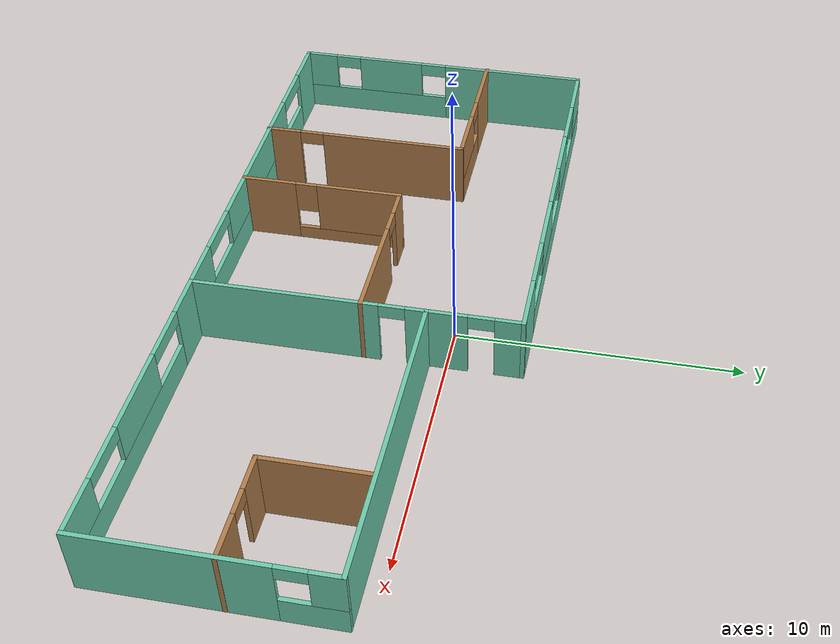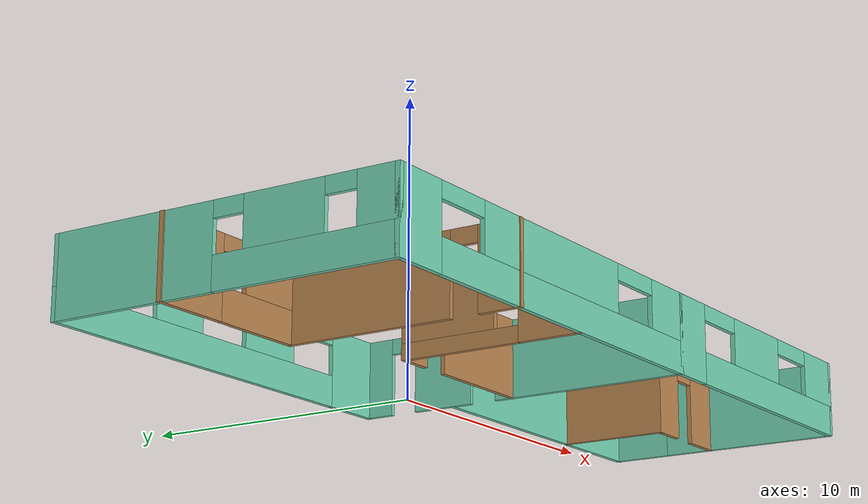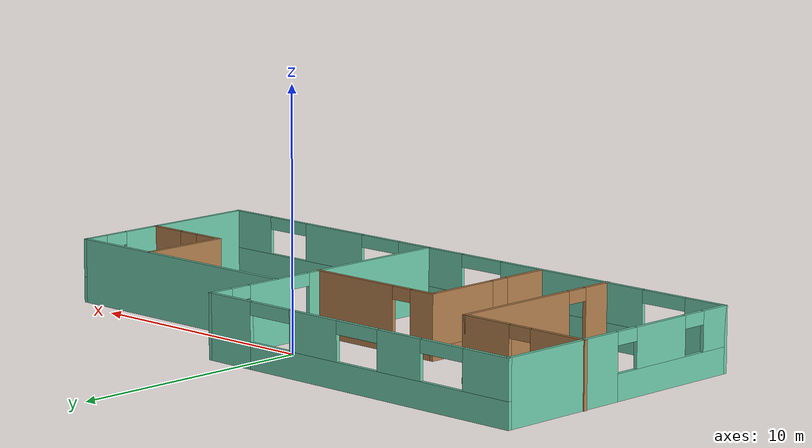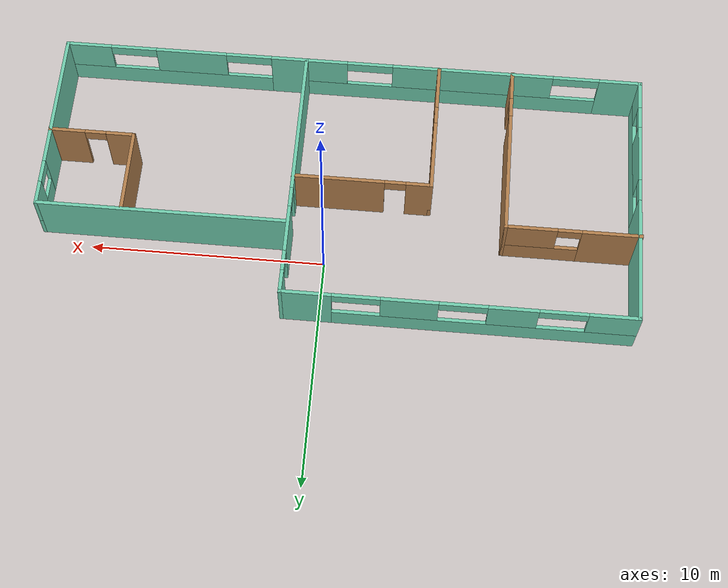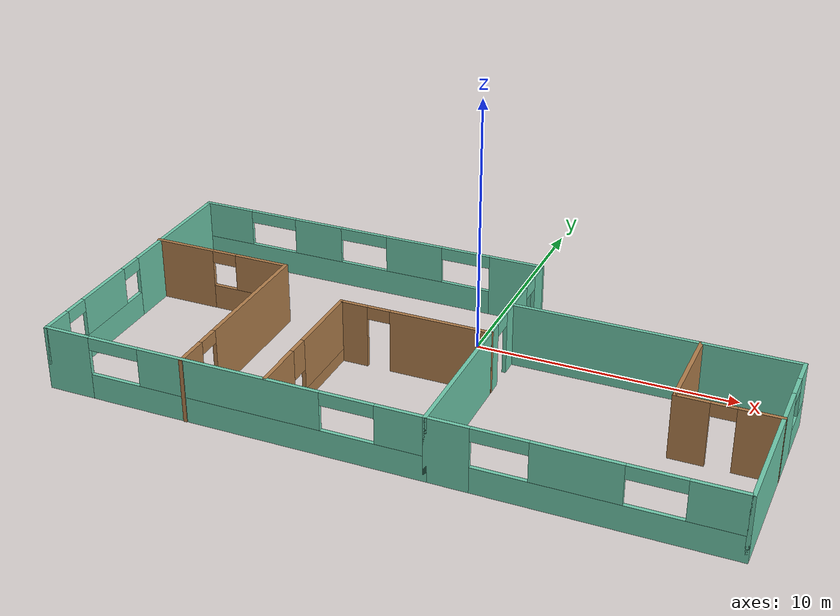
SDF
<?xml version='1.0'?>
<sdf version='1.6'>
  <model name='Building'>
    <pose frame=''>-0.476549 -3.08513 0 0 -0 0</pose>
    <link name='Wall_16'>
      <pose frame=''>-3.82517 -2.7038 0 0 -0 1.5708</pose>
      <visual name='Wall_16_Visual_0'>
        <pose frame=''>-1.99039 0 1.25 0 -0 0</pose>
        <geometry>
          <box>
            <size>2.01921 0.15 2.5</size>
          </box>
        </geometry>
        <material>
          <script>
            <uri>file://media/materials/scripts/gazebo.material</uri>
            <name>Gazebo/Wood</name>
          </script>
          <ambient>1 1 1 1</ambient>
        </material>
        <meta>
          <layer>0</layer>
        </meta>
      </visual>
      <collision name='Wall_16_Collision_0'>
        <geometry>
          <box>
            <size>2.01921 0.15 2.5</size>
          </box>
        </geometry>
        <pose frame=''>-1.99039 0 1.25 0 -0 0</pose>
      </collision>
      <visual name='Wall_16_Visual_1'>
        <pose frame=''>1.00961 0 0.25 0 -0 0</pose>
        <geometry>
          <box>
            <size>3.98079 0.15 0.5</size>
          </box>
        </geometry>
        <material>
          <script>
            <uri>file://media/materials/scripts/gazebo.material</uri>
            <name>Gazebo/Wood</name>
          </script>
          <ambient>1 1 1 1</ambient>
        </material>
        <meta>
          <layer>0</layer>
        </meta>
      </visual>
      <collision name='Wall_16_Collision_1'>
        <geometry>
          <box>
            <size>3.98079 0.15 0.5</size>
          </box>
        </geometry>
        <pose frame=''>1.00961 0 0.25 0 -0 0</pose>
      </collision>
      <visual name='Wall_16_Visual_2'>
        <pose frame=''>1.4096 0 1.5 0 -0 0</pose>
        <geometry>
          <box>
            <size>3.18079 0.15 2</size>
          </box>
        </geometry>
        <material>
          <script>
            <uri>file://media/materials/scripts/gazebo.material</uri>
            <name>Gazebo/Wood</name>
          </script>
          <ambient>1 1 1 1</ambient>
        </material>
        <meta>
          <layer>0</layer>
        </meta>
      </visual>
      <collision name='Wall_16_Collision_2'>
        <geometry>
          <box>
            <size>3.18079 0.15 2</size>
          </box>
        </geometry>
        <pose frame=''>1.4096 0 1.5 0 -0 0</pose>
      </collision>
      <visual name='Wall_16_Visual_3'>
        <pose frame=''>-0.580791 0 1.9 0 -0 0</pose>
        <geometry>
          <box>
            <size>0.8 0.15 1.2</size>
          </box>
        </geometry>
        <material>
          <script>
            <uri>file://media/materials/scripts/gazebo.material</uri>
            <name>Gazebo/Wood</name>
          </script>
          <ambient>1 1 1 1</ambient>
        </material>
        <meta>
          <layer>0</layer>
        </meta>
      </visual>
      <collision name='Wall_16_Collision_3'>
        <geometry>
          <box>
            <size>0.8 0.15 1.2</size>
          </box>
        </geometry>
        <pose frame=''>-0.580791 0 1.9 0 -0 0</pose>
      </collision>
    </link>
    <link name='Wall_17'>
      <pose frame=''>-0.900166 0.221202 0 0 -0 0</pose>
      <visual name='Wall_17_Visual_0'>
        <pose frame=''>-2.42762 0 1.25 0 -0 0</pose>
        <geometry>
          <box>
            <size>1.14476 0.15 2.5</size>
          </box>
        </geometry>
        <material>
          <script>
            <uri>file://media/materials/scripts/gazebo.material</uri>
            <name>Gazebo/Wood</name>
          </script>
          <ambient>1 1 1 1</ambient>
        </material>
        <meta>
          <layer>0</layer>
        </meta>
      </visual>
      <collision name='Wall_17_Collision_0'>
        <geometry>
          <box>
            <size>1.14476 0.15 2.5</size>
          </box>
        </geometry>
        <pose frame=''>-2.42762 0 1.25 0 -0 0</pose>
      </collision>
      <visual name='Wall_17_Visual_1'>
        <pose frame=''>1.02238 0 1.25 0 -0 0</pose>
        <geometry>
          <box>
            <size>3.95524 0.15 2.5</size>
          </box>
        </geometry>
        <material>
          <script>
            <uri>file://media/materials/scripts/gazebo.material</uri>
            <name>Gazebo/Wood</name>
          </script>
          <ambient>1 1 1 1</ambient>
        </material>
        <meta>
          <layer>0</layer>
        </meta>
      </visual>
      <collision name='Wall_17_Collision_1'>
        <geometry>
          <box>
            <size>3.95524 0.15 2.5</size>
          </box>
        </geometry>
        <pose frame=''>1.02238 0 1.25 0 -0 0</pose>
      </collision>
      <visual name='Wall_17_Visual_2'>
        <pose frame=''>-1.40524 0 2.25 0 -0 0</pose>
        <geometry>
          <box>
            <size>0.9 0.15 0.5</size>
          </box>
        </geometry>
        <material>
          <script>
            <uri>file://media/materials/scripts/gazebo.material</uri>
            <name>Gazebo/Wood</name>
          </script>
          <ambient>1 1 1 1</ambient>
        </material>
        <meta>
          <layer>0</layer>
        </meta>
      </visual>
      <collision name='Wall_17_Collision_2'>
        <geometry>
          <box>
            <size>0.9 0.15 0.5</size>
          </box>
        </geometry>
        <pose frame=''>-1.40524 0 2.25 0 -0 0</pose>
      </collision>
    </link>
    <link name='Wall_23'>
      <pose frame=''>7.32067 -5.66058 0 0 -0 0</pose>
      <visual name='Wall_23_Visual_0'>
        <pose frame=''>-4.56131 0 1.25 0 -0 0</pose>
        <geometry>
          <box>
            <size>1.62738 0.15 2.5</size>
          </box>
        </geometry>
        <material>
          <script>
            <uri>file://media/materials/scripts/gazebo.material</uri>
            <name>Gazebo/Grey</name>
          </script>
          <ambient>0.435294 0.796078 0.67451 1</ambient>
        </material>
        <meta>
          <layer>0</layer>
        </meta>
      </visual>
      <collision name='Wall_23_Collision_0'>
        <geometry>
          <box>
            <size>1.62738 0.15 2.5</size>
          </box>
        </geometry>
        <pose frame=''>-4.56131 0 1.25 0 -0 0</pose>
      </collision>
      <visual name='Wall_23_Visual_1'>
        <pose frame=''>0.81369 0 0.5 0 -0 0</pose>
        <geometry>
          <box>
            <size>9.12262 0.15 1</size>
          </box>
        </geometry>
        <material>
          <script>
            <uri>file://media/materials/scripts/gazebo.material</uri>
            <name>Gazebo/Grey</name>
          </script>
          <ambient>0.435294 0.796078 0.67451 1</ambient>
        </material>
        <meta>
          <layer>0</layer>
        </meta>
      </visual>
      <collision name='Wall_23_Collision_1'>
        <geometry>
          <box>
            <size>9.12262 0.15 1</size>
          </box>
        </geometry>
        <pose frame=''>0.81369 0 0.5 0 -0 0</pose>
      </collision>
      <visual name='Wall_23_Visual_2'>
        <pose frame=''>-0.193336 0 1.75 0 -0 0</pose>
        <geometry>
          <box>
            <size>3.10857 0.15 1.5</size>
          </box>
        </geometry>
        <material>
          <script>
            <uri>file://media/materials/scripts/gazebo.material</uri>
            <name>Gazebo/Grey</name>
          </script>
          <ambient>0.435294 0.796078 0.67451 1</ambient>
        </material>
        <meta>
          <layer>0</layer>
        </meta>
      </visual>
      <collision name='Wall_23_Collision_2'>
        <geometry>
          <box>
            <size>3.10857 0.15 1.5</size>
          </box>
        </geometry>
        <pose frame=''>-0.193336 0 1.75 0 -0 0</pose>
      </collision>
      <visual name='Wall_23_Visual_3'>
        <pose frame=''>4.36797 0 1.75 0 -0 0</pose>
        <geometry>
          <box>
            <size>2.01405 0.15 1.5</size>
          </box>
        </geometry>
        <material>
          <script>
            <uri>file://media/materials/scripts/gazebo.material</uri>
            <name>Gazebo/Grey</name>
          </script>
          <ambient>0.435294 0.796078 0.67451 1</ambient>
        </material>
        <meta>
          <layer>0</layer>
        </meta>
      </visual>
      <collision name='Wall_23_Collision_3'>
        <geometry>
          <box>
            <size>2.01405 0.15 1.5</size>
          </box>
        </geometry>
        <pose frame=''>4.36797 0 1.75 0 -0 0</pose>
      </collision>
      <visual name='Wall_23_Visual_4'>
        <pose frame=''>-2.74762 0 2.25 0 -0 0</pose>
        <geometry>
          <box>
            <size>2 0.15 0.5</size>
          </box>
        </geometry>
        <material>
          <script>
            <uri>file://media/materials/scripts/gazebo.material</uri>
            <name>Gazebo/Grey</name>
          </script>
          <ambient>0.435294 0.796078 0.67451 1</ambient>
        </material>
        <meta>
          <layer>0</layer>
        </meta>
      </visual>
      <collision name='Wall_23_Collision_4'>
        <geometry>
          <box>
            <size>2 0.15 0.5</size>
          </box>
        </geometry>
        <pose frame=''>-2.74762 0 2.25 0 -0 0</pose>
      </collision>
      <visual name='Wall_23_Visual_5'>
        <pose frame=''>2.36095 0 2.25 0 -0 0</pose>
        <geometry>
          <box>
            <size>2 0.15 0.5</size>
          </box>
        </geometry>
        <material>
          <script>
            <uri>file://media/materials/scripts/gazebo.material</uri>
            <name>Gazebo/Grey</name>
          </script>
          <ambient>0.435294 0.796078 0.67451 1</ambient>
        </material>
        <meta>
          <layer>0</layer>
        </meta>
      </visual>
      <collision name='Wall_23_Collision_5'>
        <geometry>
          <box>
            <size>2 0.15 0.5</size>
          </box>
        </geometry>
        <pose frame=''>2.36095 0 2.25 0 -0 0</pose>
      </collision>
    </link>
    <link name='Wall_24'>
      <pose frame=''>12.6207 -1.61058 0 0 -0 1.5708</pose>
      <visual name='Wall_24_Visual_0'>
        <pose frame=''>-1.03878 0 1.25 0 -0 0</pose>
        <geometry>
          <box>
            <size>6.17244 0.15 2.5</size>
          </box>
        </geometry>
        <material>
          <script>
            <uri>file://media/materials/scripts/gazebo.material</uri>
            <name>Gazebo/Grey</name>
          </script>
          <ambient>0.435294 0.796078 0.67451 1</ambient>
        </material>
        <meta>
          <layer>0</layer>
        </meta>
      </visual>
      <collision name='Wall_24_Collision_0'>
        <geometry>
          <box>
            <size>6.17244 0.15 2.5</size>
          </box>
        </geometry>
        <pose frame=''>-1.03878 0 1.25 0 -0 0</pose>
      </collision>
      <visual name='Wall_24_Visual_1'>
        <pose frame=''>3.08622 0 0.5 0 -0 0</pose>
        <geometry>
          <box>
            <size>2.07756 0.15 1</size>
          </box>
        </geometry>
        <material>
          <script>
            <uri>file://media/materials/scripts/gazebo.material</uri>
            <name>Gazebo/Grey</name>
          </script>
          <ambient>0.435294 0.796078 0.67451 1</ambient>
        </material>
        <meta>
          <layer>0</layer>
        </meta>
      </visual>
      <collision name='Wall_24_Collision_1'>
        <geometry>
          <box>
            <size>2.07756 0.15 1</size>
          </box>
        </geometry>
        <pose frame=''>3.08622 0 0.5 0 -0 0</pose>
      </collision>
      <visual name='Wall_24_Visual_2'>
        <pose frame=''>3.58622 0 1.75 0 -0 0</pose>
        <geometry>
          <box>
            <size>1.07756 0.15 1.5</size>
          </box>
        </geometry>
        <material>
          <script>
            <uri>file://media/materials/scripts/gazebo.material</uri>
            <name>Gazebo/Grey</name>
          </script>
          <ambient>0.435294 0.796078 0.67451 1</ambient>
        </material>
        <meta>
          <layer>0</layer>
        </meta>
      </visual>
      <collision name='Wall_24_Collision_2'>
        <geometry>
          <box>
            <size>1.07756 0.15 1.5</size>
          </box>
        </geometry>
        <pose frame=''>3.58622 0 1.75 0 -0 0</pose>
      </collision>
      <visual name='Wall_24_Visual_3'>
        <pose frame=''>2.54744 0 2.25 0 -0 0</pose>
        <geometry>
          <box>
            <size>1 0.15 0.5</size>
          </box>
        </geometry>
        <material>
          <script>
            <uri>file://media/materials/scripts/gazebo.material</uri>
            <name>Gazebo/Grey</name>
          </script>
          <ambient>0.435294 0.796078 0.67451 1</ambient>
        </material>
        <meta>
          <layer>0</layer>
        </meta>
      </visual>
      <collision name='Wall_24_Collision_3'>
        <geometry>
          <box>
            <size>1 0.15 0.5</size>
          </box>
        </geometry>
        <pose frame=''>2.54744 0 2.25 0 -0 0</pose>
      </collision>
    </link>
    <link name='Wall_25'>
      <collision name='Wall_25_Collision'>
        <geometry>
          <box>
            <size>10.75 0.15 2.5</size>
          </box>
        </geometry>
        <pose frame=''>0 0 1.25 0 -0 0</pose>
      </collision>
      <visual name='Wall_25_Visual'>
        <pose frame=''>0 0 1.25 0 -0 0</pose>
        <geometry>
          <box>
            <size>10.75 0.15 2.5</size>
          </box>
        </geometry>
        <material>
          <script>
            <uri>file://media/materials/scripts/gazebo.material</uri>
            <name>Gazebo/Grey</name>
          </script>
          <ambient>0.435294 0.796078 0.67451 1</ambient>
        </material>
        <meta>
          <layer>0</layer>
        </meta>
      </visual>
      <pose frame=''>7.32067 2.43942 0 0 -0 3.14159</pose>
    </link>
    <link name='Wall_27'>
      <collision name='Wall_27_Collision'>
        <geometry>
          <box>
            <size>3.75 0.15 2.5</size>
          </box>
        </geometry>
        <pose frame=''>0 0 1.25 0 -0 0</pose>
      </collision>
      <visual name='Wall_27_Visual'>
        <pose frame=''>0 0 1.25 0 -0 0</pose>
        <geometry>
          <box>
            <size>3.75 0.15 2.5</size>
          </box>
        </geometry>
        <material>
          <script>
            <uri>file://media/materials/scripts/gazebo.material</uri>
            <name>Gazebo/Wood</name>
          </script>
          <ambient>1 1 1 1</ambient>
        </material>
        <meta>
          <layer>0</layer>
        </meta>
      </visual>
      <pose frame=''>9.02628 0.615984 0 0 0 -1.5708</pose>
    </link>
    <link name='Wall_28'>
      <pose frame=''>10.8263 -1.18402 0 0 -0 0</pose>
      <visual name='Wall_28_Visual_0'>
        <pose frame=''>-1.23789 0 1.25 0 -0 0</pose>
        <geometry>
          <box>
            <size>1.27421 0.15 2.5</size>
          </box>
        </geometry>
        <material>
          <script>
            <uri>file://media/materials/scripts/gazebo.material</uri>
            <name>Gazebo/Wood</name>
          </script>
          <ambient>1 1 1 1</ambient>
        </material>
        <meta>
          <layer>0</layer>
        </meta>
      </visual>
      <collision name='Wall_28_Collision_0'>
        <geometry>
          <box>
            <size>1.27421 0.15 2.5</size>
          </box>
        </geometry>
        <pose frame=''>-1.23789 0 1.25 0 -0 0</pose>
      </collision>
      <visual name='Wall_28_Visual_1'>
        <pose frame=''>1.08711 0 1.25 0 -0 0</pose>
        <geometry>
          <box>
            <size>1.57579 0.15 2.5</size>
          </box>
        </geometry>
        <material>
          <script>
            <uri>file://media/materials/scripts/gazebo.material</uri>
            <name>Gazebo/Wood</name>
          </script>
          <ambient>1 1 1 1</ambient>
        </material>
        <meta>
          <layer>0</layer>
        </meta>
      </visual>
      <collision name='Wall_28_Collision_1'>
        <geometry>
          <box>
            <size>1.57579 0.15 2.5</size>
          </box>
        </geometry>
        <pose frame=''>1.08711 0 1.25 0 -0 0</pose>
      </collision>
      <visual name='Wall_28_Visual_2'>
        <pose frame=''>-0.150787 0 2.25 0 -0 0</pose>
        <geometry>
          <box>
            <size>0.9 0.15 0.5</size>
          </box>
        </geometry>
        <material>
          <script>
            <uri>file://media/materials/scripts/gazebo.material</uri>
            <name>Gazebo/Wood</name>
          </script>
          <ambient>1 1 1 1</ambient>
        </material>
        <meta>
          <layer>0</layer>
        </meta>
      </visual>
      <collision name='Wall_28_Collision_2'>
        <geometry>
          <box>
            <size>0.9 0.15 0.5</size>
          </box>
        </geometry>
        <pose frame=''>-0.150787 0 2.25 0 -0 0</pose>
      </collision>
    </link>
    <link name='Wall_30'>
      <pose frame=''>-9.82628 1.91058 0 0 -0 0</pose>
      <visual name='Wall_30_Visual_0'>
        <pose frame=''>-1.61536 0 1.25 0 -0 0</pose>
        <geometry>
          <box>
            <size>2.51928 0.15 2.5</size>
          </box>
        </geometry>
        <material>
          <script>
            <uri>file://media/materials/scripts/gazebo.material</uri>
            <name>Gazebo/Wood</name>
          </script>
          <ambient>1 1 1 1</ambient>
        </material>
        <meta>
          <layer>0</layer>
        </meta>
      </visual>
      <collision name='Wall_30_Collision_0'>
        <geometry>
          <box>
            <size>2.51928 0.15 2.5</size>
          </box>
        </geometry>
        <pose frame=''>-1.61536 0 1.25 0 -0 0</pose>
      </collision>
      <visual name='Wall_30_Visual_1'>
        <pose frame=''>1.25964 0 0.5 0 -0 0</pose>
        <geometry>
          <box>
            <size>3.23072 0.15 1</size>
          </box>
        </geometry>
        <material>
          <script>
            <uri>file://media/materials/scripts/gazebo.material</uri>
            <name>Gazebo/Wood</name>
          </script>
          <ambient>1 1 1 1</ambient>
        </material>
        <meta>
          <layer>0</layer>
        </meta>
      </visual>
      <collision name='Wall_30_Collision_1'>
        <geometry>
          <box>
            <size>3.23072 0.15 1</size>
          </box>
        </geometry>
        <pose frame=''>1.25964 0 0.5 0 -0 0</pose>
      </collision>
      <visual name='Wall_30_Visual_2'>
        <pose frame=''>1.75964 0 1.75 0 -0 0</pose>
        <geometry>
          <box>
            <size>2.23072 0.15 1.5</size>
          </box>
        </geometry>
        <material>
          <script>
            <uri>file://media/materials/scripts/gazebo.material</uri>
            <name>Gazebo/Wood</name>
          </script>
          <ambient>1 1 1 1</ambient>
        </material>
        <meta>
          <layer>0</layer>
        </meta>
      </visual>
      <collision name='Wall_30_Collision_2'>
        <geometry>
          <box>
            <size>2.23072 0.15 1.5</size>
          </box>
        </geometry>
        <pose frame=''>1.75964 0 1.75 0 -0 0</pose>
      </collision>
      <visual name='Wall_30_Visual_3'>
        <pose frame=''>0.144283 0 2.25 0 -0 0</pose>
        <geometry>
          <box>
            <size>1 0.15 0.5</size>
          </box>
        </geometry>
        <material>
          <script>
            <uri>file://media/materials/scripts/gazebo.material</uri>
            <name>Gazebo/Wood</name>
          </script>
          <ambient>1 1 1 1</ambient>
        </material>
        <meta>
          <layer>0</layer>
        </meta>
      </visual>
      <collision name='Wall_30_Collision_3'>
        <geometry>
          <box>
            <size>1 0.15 0.5</size>
          </box>
        </geometry>
        <pose frame=''>0.144283 0 2.25 0 -0 0</pose>
      </collision>
    </link>
    <link name='Wall_33'>
      <pose frame=''>-7.02628 -1.88942 0 0 0 -1.5708</pose>
      <visual name='Wall_33_Visual_0'>
        <pose frame=''>-1.12318 0 1.25 0 -0 0</pose>
        <geometry>
          <box>
            <size>5.50364 0.15 2.5</size>
          </box>
        </geometry>
        <material>
          <script>
            <uri>file://media/materials/scripts/gazebo.material</uri>
            <name>Gazebo/Wood</name>
          </script>
          <ambient>1 1 1 1</ambient>
        </material>
        <meta>
          <layer>0</layer>
        </meta>
      </visual>
      <collision name='Wall_33_Collision_0'>
        <geometry>
          <box>
            <size>5.50364 0.15 2.5</size>
          </box>
        </geometry>
        <pose frame=''>-1.12318 0 1.25 0 -0 0</pose>
      </collision>
      <visual name='Wall_33_Visual_1'>
        <pose frame=''>3.20182 0 1.25 0 -0 0</pose>
        <geometry>
          <box>
            <size>1.34636 0.15 2.5</size>
          </box>
        </geometry>
        <material>
          <script>
            <uri>file://media/materials/scripts/gazebo.material</uri>
            <name>Gazebo/Wood</name>
          </script>
          <ambient>1 1 1 1</ambient>
        </material>
        <meta>
          <layer>0</layer>
        </meta>
      </visual>
      <collision name='Wall_33_Collision_1'>
        <geometry>
          <box>
            <size>1.34636 0.15 2.5</size>
          </box>
        </geometry>
        <pose frame=''>3.20182 0 1.25 0 -0 0</pose>
      </collision>
      <visual name='Wall_33_Visual_2'>
        <pose frame=''>2.07864 0 2.25 0 -0 0</pose>
        <geometry>
          <box>
            <size>0.9 0.15 0.5</size>
          </box>
        </geometry>
        <material>
          <script>
            <uri>file://media/materials/scripts/gazebo.material</uri>
            <name>Gazebo/Wood</name>
          </script>
          <ambient>1 1 1 1</ambient>
        </material>
        <meta>
          <layer>0</layer>
        </meta>
      </visual>
      <collision name='Wall_33_Collision_2'>
        <geometry>
          <box>
            <size>0.9 0.15 0.5</size>
          </box>
        </geometry>
        <pose frame=''>2.07864 0 2.25 0 -0 0</pose>
      </collision>
    </link>
    <link name='Wall_4'>
      <pose frame=''>-12.5793 0.01442 0 0 0 -1.5708</pose>
      <visual name='Wall_4_Visual_0'>
        <pose frame=''>-2.95936 0 1.25 0 -0 0</pose>
        <geometry>
          <box>
            <size>5.58129 0.15 2.5</size>
          </box>
        </geometry>
        <material>
          <script>
            <uri>file://media/materials/scripts/gazebo.material</uri>
            <name>Gazebo/Grey</name>
          </script>
          <ambient>0.435294 0.796078 0.67451 1</ambient>
        </material>
        <meta>
          <layer>0</layer>
        </meta>
      </visual>
      <collision name='Wall_4_Collision_0'>
        <geometry>
          <box>
            <size>5.58129 0.15 2.5</size>
          </box>
        </geometry>
        <pose frame=''>-2.95936 0 1.25 0 -0 0</pose>
      </collision>
      <visual name='Wall_4_Visual_1'>
        <pose frame=''>2.79064 0 0.5 0 -0 0</pose>
        <geometry>
          <box>
            <size>5.91871 0.15 1</size>
          </box>
        </geometry>
        <material>
          <script>
            <uri>file://media/materials/scripts/gazebo.material</uri>
            <name>Gazebo/Grey</name>
          </script>
          <ambient>0.435294 0.796078 0.67451 1</ambient>
        </material>
        <meta>
          <layer>0</layer>
        </meta>
      </visual>
      <collision name='Wall_4_Collision_1'>
        <geometry>
          <box>
            <size>5.91871 0.15 1</size>
          </box>
        </geometry>
        <pose frame=''>2.79064 0 0.5 0 -0 0</pose>
      </collision>
      <visual name='Wall_4_Visual_2'>
        <pose frame=''>2.13634 0 1.75 0 -0 0</pose>
        <geometry>
          <box>
            <size>2.61011 0.15 1.5</size>
          </box>
        </geometry>
        <material>
          <script>
            <uri>file://media/materials/scripts/gazebo.material</uri>
            <name>Gazebo/Grey</name>
          </script>
          <ambient>0.435294 0.796078 0.67451 1</ambient>
        </material>
        <meta>
          <layer>0</layer>
        </meta>
      </visual>
      <collision name='Wall_4_Collision_2'>
        <geometry>
          <box>
            <size>2.61011 0.15 1.5</size>
          </box>
        </geometry>
        <pose frame=''>2.13634 0 1.75 0 -0 0</pose>
      </collision>
      <visual name='Wall_4_Visual_3'>
        <pose frame=''>5.0957 0 1.75 0 -0 0</pose>
        <geometry>
          <box>
            <size>1.3086 0.15 1.5</size>
          </box>
        </geometry>
        <material>
          <script>
            <uri>file://media/materials/scripts/gazebo.material</uri>
            <name>Gazebo/Grey</name>
          </script>
          <ambient>0.435294 0.796078 0.67451 1</ambient>
        </material>
        <meta>
          <layer>0</layer>
        </meta>
      </visual>
      <collision name='Wall_4_Collision_3'>
        <geometry>
          <box>
            <size>1.3086 0.15 1.5</size>
          </box>
        </geometry>
        <pose frame=''>5.0957 0 1.75 0 -0 0</pose>
      </collision>
      <visual name='Wall_4_Visual_4'>
        <pose frame=''>0.331288 0 2.25 0 -0 0</pose>
        <geometry>
          <box>
            <size>1 0.15 0.5</size>
          </box>
        </geometry>
        <material>
          <script>
            <uri>file://media/materials/scripts/gazebo.material</uri>
            <name>Gazebo/Grey</name>
          </script>
          <ambient>0.435294 0.796078 0.67451 1</ambient>
        </material>
        <meta>
          <layer>0</layer>
        </meta>
      </visual>
      <collision name='Wall_4_Collision_4'>
        <geometry>
          <box>
            <size>1 0.15 0.5</size>
          </box>
        </geometry>
        <pose frame=''>0.331288 0 2.25 0 -0 0</pose>
      </collision>
      <visual name='Wall_4_Visual_5'>
        <pose frame=''>3.9414 0 2.25 0 -0 0</pose>
        <geometry>
          <box>
            <size>1 0.15 0.5</size>
          </box>
        </geometry>
        <material>
          <script>
            <uri>file://media/materials/scripts/gazebo.material</uri>
            <name>Gazebo/Grey</name>
          </script>
          <ambient>0.435294 0.796078 0.67451 1</ambient>
        </material>
        <meta>
          <layer>0</layer>
        </meta>
      </visual>
      <collision name='Wall_4_Collision_5'>
        <geometry>
          <box>
            <size>1 0.15 0.5</size>
          </box>
        </geometry>
        <pose frame=''>3.9414 0 2.25 0 -0 0</pose>
      </collision>
    </link>
    <link name='Wall_5'>
      <pose frame=''>-5.27933 -5.66058 0 0 -0 0</pose>
      <visual name='Wall_5_Visual_0'>
        <pose frame=''>-6.45001 0 1.25 0 -0 0</pose>
        <geometry>
          <box>
            <size>1.84997 0.15 2.5</size>
          </box>
        </geometry>
        <material>
          <script>
            <uri>file://media/materials/scripts/gazebo.material</uri>
            <name>Gazebo/Grey</name>
          </script>
          <ambient>0.435294 0.796078 0.67451 1</ambient>
        </material>
        <meta>
          <layer>0</layer>
        </meta>
      </visual>
      <collision name='Wall_5_Collision_0'>
        <geometry>
          <box>
            <size>1.84997 0.15 2.5</size>
          </box>
        </geometry>
        <pose frame=''>-6.45001 0 1.25 0 -0 0</pose>
      </collision>
      <visual name='Wall_5_Visual_1'>
        <pose frame=''>0.924986 0 0.5 0 -0 0</pose>
        <geometry>
          <box>
            <size>12.9 0.15 1</size>
          </box>
        </geometry>
        <material>
          <script>
            <uri>file://media/materials/scripts/gazebo.material</uri>
            <name>Gazebo/Grey</name>
          </script>
          <ambient>0.435294 0.796078 0.67451 1</ambient>
        </material>
        <meta>
          <layer>0</layer>
        </meta>
      </visual>
      <collision name='Wall_5_Collision_1'>
        <geometry>
          <box>
            <size>12.9 0.15 1</size>
          </box>
        </geometry>
        <pose frame=''>0.924986 0 0.5 0 -0 0</pose>
      </collision>
      <visual name='Wall_5_Visual_2'>
        <pose frame=''>-0.012969 0 1.75 0 -0 0</pose>
        <geometry>
          <box>
            <size>7.02412 0.15 1.5</size>
          </box>
        </geometry>
        <material>
          <script>
            <uri>file://media/materials/scripts/gazebo.material</uri>
            <name>Gazebo/Grey</name>
          </script>
          <ambient>0.435294 0.796078 0.67451 1</ambient>
        </material>
        <meta>
          <layer>0</layer>
        </meta>
      </visual>
      <collision name='Wall_5_Collision_2'>
        <geometry>
          <box>
            <size>7.02412 0.15 1.5</size>
          </box>
        </geometry>
        <pose frame=''>-0.012969 0 1.75 0 -0 0</pose>
      </collision>
      <visual name='Wall_5_Visual_3'>
        <pose frame=''>6.43705 0 1.75 0 -0 0</pose>
        <geometry>
          <box>
            <size>1.87591 0.15 1.5</size>
          </box>
        </geometry>
        <material>
          <script>
            <uri>file://media/materials/scripts/gazebo.material</uri>
            <name>Gazebo/Grey</name>
          </script>
          <ambient>0.435294 0.796078 0.67451 1</ambient>
        </material>
        <meta>
          <layer>0</layer>
        </meta>
      </visual>
      <collision name='Wall_5_Collision_3'>
        <geometry>
          <box>
            <size>1.87591 0.15 1.5</size>
          </box>
        </geometry>
        <pose frame=''>6.43705 0 1.75 0 -0 0</pose>
      </collision>
      <visual name='Wall_5_Visual_4'>
        <pose frame=''>-4.52503 0 2.25 0 -0 0</pose>
        <geometry>
          <box>
            <size>2 0.15 0.5</size>
          </box>
        </geometry>
        <material>
          <script>
            <uri>file://media/materials/scripts/gazebo.material</uri>
            <name>Gazebo/Grey</name>
          </script>
          <ambient>0.435294 0.796078 0.67451 1</ambient>
        </material>
        <meta>
          <layer>0</layer>
        </meta>
      </visual>
      <collision name='Wall_5_Collision_4'>
        <geometry>
          <box>
            <size>2 0.15 0.5</size>
          </box>
        </geometry>
        <pose frame=''>-4.52503 0 2.25 0 -0 0</pose>
      </collision>
      <visual name='Wall_5_Visual_5'>
        <pose frame=''>4.49909 0 2.25 0 -0 0</pose>
        <geometry>
          <box>
            <size>2 0.15 0.5</size>
          </box>
        </geometry>
        <material>
          <script>
            <uri>file://media/materials/scripts/gazebo.material</uri>
            <name>Gazebo/Grey</name>
          </script>
          <ambient>0.435294 0.796078 0.67451 1</ambient>
        </material>
        <meta>
          <layer>0</layer>
        </meta>
      </visual>
      <collision name='Wall_5_Collision_5'>
        <geometry>
          <box>
            <size>2 0.15 0.5</size>
          </box>
        </geometry>
        <pose frame=''>4.49909 0 2.25 0 -0 0</pose>
      </collision>
    </link>
    <link name='Wall_6'>
      <pose frame=''>2.02067 0.01442 0 0 -0 1.5708</pose>
      <visual name='Wall_6_Visual_0'>
        <pose frame=''>-2.47112 0 1.25 0 -0 0</pose>
        <geometry>
          <box>
            <size>6.55776 0.15 2.5</size>
          </box>
        </geometry>
        <material>
          <script>
            <uri>file://media/materials/scripts/gazebo.material</uri>
            <name>Gazebo/Grey</name>
          </script>
          <ambient>0.435294 0.796078 0.67451 1</ambient>
        </material>
        <meta>
          <layer>0</layer>
        </meta>
      </visual>
      <collision name='Wall_6_Collision_0'>
        <geometry>
          <box>
            <size>6.55776 0.15 2.5</size>
          </box>
        </geometry>
        <pose frame=''>-2.47112 0 1.25 0 -0 0</pose>
      </collision>
      <visual name='Wall_6_Visual_1'>
        <pose frame=''>2.76067 0 1.25 0 -0 0</pose>
        <geometry>
          <box>
            <size>2.10582 0.15 2.5</size>
          </box>
        </geometry>
        <material>
          <script>
            <uri>file://media/materials/scripts/gazebo.material</uri>
            <name>Gazebo/Grey</name>
          </script>
          <ambient>0.435294 0.796078 0.67451 1</ambient>
        </material>
        <meta>
          <layer>0</layer>
        </meta>
      </visual>
      <collision name='Wall_6_Collision_1'>
        <geometry>
          <box>
            <size>2.10582 0.15 2.5</size>
          </box>
        </geometry>
        <pose frame=''>2.76067 0 1.25 0 -0 0</pose>
      </collision>
      <visual name='Wall_6_Visual_2'>
        <pose frame=''>5.23179 0 1.25 0 -0 0</pose>
        <geometry>
          <box>
            <size>1.03642 0.15 2.5</size>
          </box>
        </geometry>
        <material>
          <script>
            <uri>file://media/materials/scripts/gazebo.material</uri>
            <name>Gazebo/Grey</name>
          </script>
          <ambient>0.435294 0.796078 0.67451 1</ambient>
        </material>
        <meta>
          <layer>0</layer>
        </meta>
      </visual>
      <collision name='Wall_6_Collision_2'>
        <geometry>
          <box>
            <size>1.03642 0.15 2.5</size>
          </box>
        </geometry>
        <pose frame=''>5.23179 0 1.25 0 -0 0</pose>
      </collision>
      <visual name='Wall_6_Visual_3'>
        <pose frame=''>1.25776 0 2.25 0 -0 0</pose>
        <geometry>
          <box>
            <size>0.9 0.15 0.5</size>
          </box>
        </geometry>
        <material>
          <script>
            <uri>file://media/materials/scripts/gazebo.material</uri>
            <name>Gazebo/Grey</name>
          </script>
          <ambient>0.435294 0.796078 0.67451 1</ambient>
        </material>
        <meta>
          <layer>0</layer>
        </meta>
      </visual>
      <collision name='Wall_6_Collision_3'>
        <geometry>
          <box>
            <size>0.9 0.15 0.5</size>
          </box>
        </geometry>
        <pose frame=''>1.25776 0 2.25 0 -0 0</pose>
      </collision>
      <visual name='Wall_6_Visual_4'>
        <pose frame=''>4.26358 0 2.25 0 -0 0</pose>
        <geometry>
          <box>
            <size>0.9 0.15 0.5</size>
          </box>
        </geometry>
        <material>
          <script>
            <uri>file://media/materials/scripts/gazebo.material</uri>
            <name>Gazebo/Grey</name>
          </script>
          <ambient>0.435294 0.796078 0.67451 1</ambient>
        </material>
        <meta>
          <layer>0</layer>
        </meta>
      </visual>
      <collision name='Wall_6_Collision_4'>
        <geometry>
          <box>
            <size>0.9 0.15 0.5</size>
          </box>
        </geometry>
        <pose frame=''>4.26358 0 2.25 0 -0 0</pose>
      </collision>
    </link>
    <link name='Wall_7'>
      <pose frame=''>-5.27933 5.68942 0 0 -0 3.14159</pose>
      <visual name='Wall_7_Visual_0'>
        <pose frame=''>-6.28409 0 1.25 0 -0 0</pose>
        <geometry>
          <box>
            <size>2.18181 0.15 2.5</size>
          </box>
        </geometry>
        <material>
          <script>
            <uri>file://media/materials/scripts/gazebo.material</uri>
            <name>Gazebo/Grey</name>
          </script>
          <ambient>0.435294 0.796078 0.67451 1</ambient>
        </material>
        <meta>
          <layer>0</layer>
        </meta>
      </visual>
      <collision name='Wall_7_Collision_0'>
        <geometry>
          <box>
            <size>2.18181 0.15 2.5</size>
          </box>
        </geometry>
        <pose frame=''>-6.28409 0 1.25 0 -0 0</pose>
      </collision>
      <visual name='Wall_7_Visual_1'>
        <pose frame=''>1.09091 0 0.5 0 -0 0</pose>
        <geometry>
          <box>
            <size>12.5682 0.15 1</size>
          </box>
        </geometry>
        <material>
          <script>
            <uri>file://media/materials/scripts/gazebo.material</uri>
            <name>Gazebo/Grey</name>
          </script>
          <ambient>0.435294 0.796078 0.67451 1</ambient>
        </material>
        <meta>
          <layer>0</layer>
        </meta>
      </visual>
      <collision name='Wall_7_Collision_1'>
        <geometry>
          <box>
            <size>12.5682 0.15 1</size>
          </box>
        </geometry>
        <pose frame=''>1.09091 0 0.5 0 -0 0</pose>
      </collision>
      <visual name='Wall_7_Visual_2'>
        <pose frame=''>-2.00599 0 1.75 0 -0 0</pose>
        <geometry>
          <box>
            <size>2.3744 0.15 1.5</size>
          </box>
        </geometry>
        <material>
          <script>
            <uri>file://media/materials/scripts/gazebo.material</uri>
            <name>Gazebo/Grey</name>
          </script>
          <ambient>0.435294 0.796078 0.67451 1</ambient>
        </material>
        <meta>
          <layer>0</layer>
        </meta>
      </visual>
      <collision name='Wall_7_Collision_2'>
        <geometry>
          <box>
            <size>2.3744 0.15 1.5</size>
          </box>
        </geometry>
        <pose frame=''>-2.00599 0 1.75 0 -0 0</pose>
      </collision>
      <visual name='Wall_7_Visual_3'>
        <pose frame=''>2.21547 0 1.75 0 -0 0</pose>
        <geometry>
          <box>
            <size>2.0685 0.15 1.5</size>
          </box>
        </geometry>
        <material>
          <script>
            <uri>file://media/materials/scripts/gazebo.material</uri>
            <name>Gazebo/Grey</name>
          </script>
          <ambient>0.435294 0.796078 0.67451 1</ambient>
        </material>
        <meta>
          <layer>0</layer>
        </meta>
      </visual>
      <collision name='Wall_7_Collision_3'>
        <geometry>
          <box>
            <size>2.0685 0.15 1.5</size>
          </box>
        </geometry>
        <pose frame=''>2.21547 0 1.75 0 -0 0</pose>
      </collision>
      <visual name='Wall_7_Visual_4'>
        <pose frame=''>6.31236 0 1.75 0 -0 0</pose>
        <geometry>
          <box>
            <size>2.12528 0.15 1.5</size>
          </box>
        </geometry>
        <material>
          <script>
            <uri>file://media/materials/scripts/gazebo.material</uri>
            <name>Gazebo/Grey</name>
          </script>
          <ambient>0.435294 0.796078 0.67451 1</ambient>
        </material>
        <meta>
          <layer>0</layer>
        </meta>
      </visual>
      <collision name='Wall_7_Collision_4'>
        <geometry>
          <box>
            <size>2.12528 0.15 1.5</size>
          </box>
        </geometry>
        <pose frame=''>6.31236 0 1.75 0 -0 0</pose>
      </collision>
      <visual name='Wall_7_Visual_5'>
        <pose frame=''>-4.19319 0 2.25 0 -0 0</pose>
        <geometry>
          <box>
            <size>2 0.15 0.5</size>
          </box>
        </geometry>
        <material>
          <script>
            <uri>file://media/materials/scripts/gazebo.material</uri>
            <name>Gazebo/Grey</name>
          </script>
          <ambient>0.435294 0.796078 0.67451 1</ambient>
        </material>
        <meta>
          <layer>0</layer>
        </meta>
      </visual>
      <collision name='Wall_7_Collision_5'>
        <geometry>
          <box>
            <size>2 0.15 0.5</size>
          </box>
        </geometry>
        <pose frame=''>-4.19319 0 2.25 0 -0 0</pose>
      </collision>
      <visual name='Wall_7_Visual_6'>
        <pose frame=''>0.181215 0 2.25 0 -0 0</pose>
        <geometry>
          <box>
            <size>2 0.15 0.5</size>
          </box>
        </geometry>
        <material>
          <script>
            <uri>file://media/materials/scripts/gazebo.material</uri>
            <name>Gazebo/Grey</name>
          </script>
          <ambient>0.435294 0.796078 0.67451 1</ambient>
        </material>
        <meta>
          <layer>0</layer>
        </meta>
      </visual>
      <collision name='Wall_7_Collision_6'>
        <geometry>
          <box>
            <size>2 0.15 0.5</size>
          </box>
        </geometry>
        <pose frame=''>0.181215 0 2.25 0 -0 0</pose>
      </collision>
      <visual name='Wall_7_Visual_7'>
        <pose frame=''>4.24972 0 2.25 0 -0 0</pose>
        <geometry>
          <box>
            <size>2 0.15 0.5</size>
          </box>
        </geometry>
        <material>
          <script>
            <uri>file://media/materials/scripts/gazebo.material</uri>
            <name>Gazebo/Grey</name>
          </script>
          <ambient>0.435294 0.796078 0.67451 1</ambient>
        </material>
        <meta>
          <layer>0</layer>
        </meta>
      </visual>
      <collision name='Wall_7_Collision_7'>
        <geometry>
          <box>
            <size>2 0.15 0.5</size>
          </box>
        </geometry>
        <pose frame=''>4.24972 0 2.25 0 -0 0</pose>
      </collision>
    </link>
    <static>1</static>
  </model>
</sdf>
